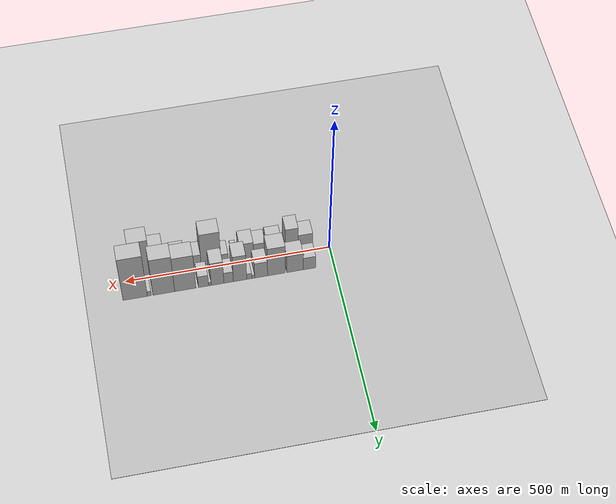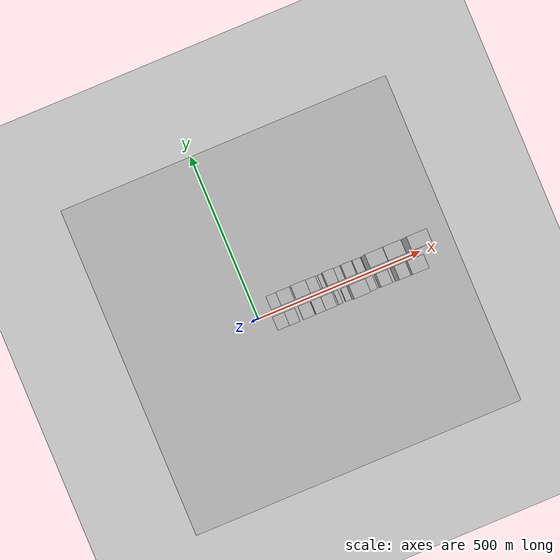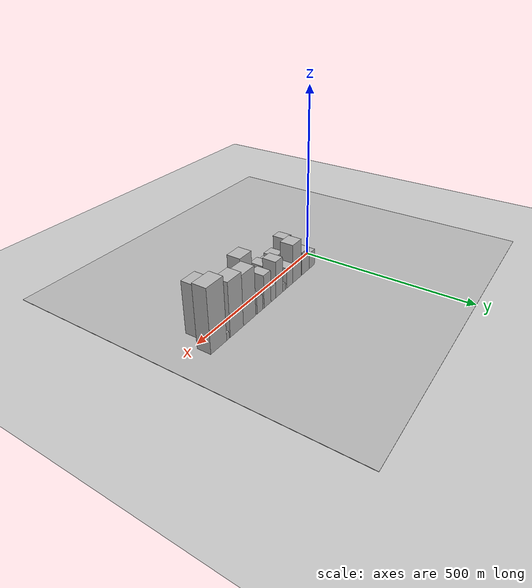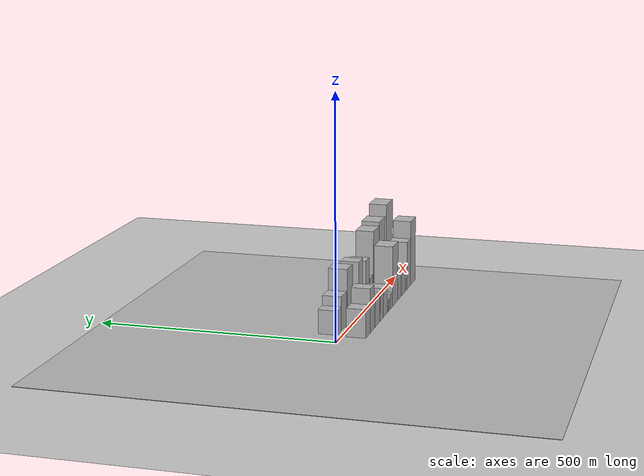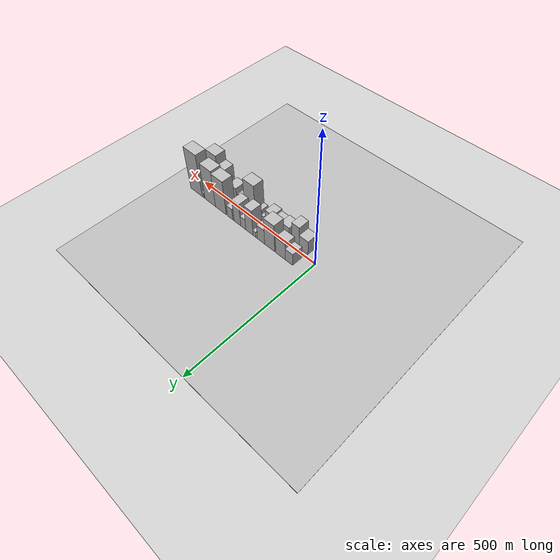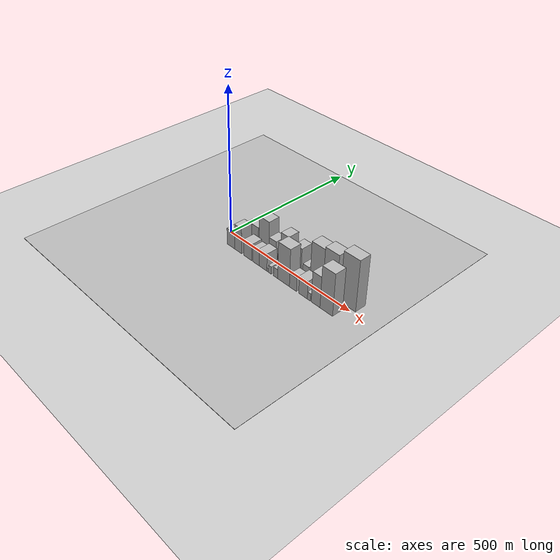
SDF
<?xml version="1.0" encoding="utf-8"?>

<sdf version="1.6">

   <world name="default">

      <gui fullscreen="0">

         <camera name="user_camera">

            <pose>-15 0 4.57585 0 0 0</pose>

            <view_controller>orbit</view_controller>

         </camera>

      </gui>

      <scene>

         <sky>

           <clouds>

             <speed>12</speed>

           </clouds>

         </sky>

         <ambient>0.4 0.4 0.4 1</ambient>

         <background>0.7 0.7 0.7 1</background>

         <shadows>1</shadows>

      </scene>

      <gravity>0 0 -9.8066</gravity>

      <magnetic_field>6e-06 2.3e-05 -4.2e-05</magnetic_field>

      <physics default="0" name="default_physics" type="ode">

         <ode>

            <solver>

               <type>quick</type>

               <iters>10</iters>

               <sor>1.0</sor>

               <use_dynamic_moi_rescaling>0</use_dynamic_moi_rescaling>

            </solver>

            <constraints>

               <cfm>0</cfm>

               <erp>0.2</erp>

               <contact_max_correcting_vel>100</contact_max_correcting_vel>

               <contact_surface_layer>0.001</contact_surface_layer>

            </constraints>

         </ode>

         <max_step_size>0.004</max_step_size>

         <real_time_factor>1</real_time_factor>

         <real_time_update_rate>250</real_time_update_rate>

      </physics>

      <light name="sun" type="directional">

         <cast_shadows>1</cast_shadows>

         <pose>0 0 10 0 0 0</pose>

         <diffuse>0.8 0.8 0.8 1</diffuse>

         <specular>0.2 0.2 0.2 1</specular>

         <attenuation>

            <range>1000</range>

            <constant>0.9</constant>

            <linear>0.01</linear>

            <quadratic>0.001</quadratic>

         </attenuation>

         <direction>-0.5 0.1 -0.9</direction>

      </light>

      <include>

         <name>ground_plane_1</name>

         <uri>model://HANNAS_ground_plane</uri>

         <pose>0 0 0  0 0 0</pose>

      </include>

      <include>

         <name>ground_plane_2</name>

         <uri>model://HANNAS_ground_plane</uri>

         <pose>100 0 0  0 0 0</pose>

      </include>

      <model name="building_1">

         <static>1</static>

         <pose frame="">60.1841 30.0000 0 0.000000 0.000000 1.570796</pose>

         <link name="link">

            <pose frame="">0 0 25.50 0 0 0</pose>

            <collision name="collision">

               <geometry>

                  <box>

                     <size>40.0000 30.3682 51.0000</size>

                  </box>

               </geometry>

               <max_contacts>10</max_contacts>

               <surface>

                  <contact>

                     <ode/>

                  </contact>

                  <bounce/>

                  <friction>

                     <torsional>

                        <ode/>

                     </torsional>

                     <ode/>

                  </friction>

               </surface>

            </collision>

            <visual name="visual">

               <cast_shadows>0</cast_shadows>

               <geometry>

                  <box>

                     <size>40.0000 30.3682 51.0000</size>

                  </box>

               </geometry>

               <material>

                  <script>

                     <uri>model://HANNAS_wall/materials/scripts</uri>

                     <uri>model://HANNAS_wall/materials/textures</uri>

                     <name>vrc/HANNAS_wall</name>

                  </script>

               </material>

            </visual>

            <self_collide>0</self_collide>

            <enable_wind>0</enable_wind>

            <kinematic>0</kinematic>

         </link>

      </model>

      <model name="building_2">

         <static>1</static>

         <pose frame="">95.4331 30.0000 0 0.000000 0.000000 1.570796</pose>

         <link name="link">

            <pose frame="">0 0 36.00 0 0 0</pose>

            <collision name="collision">

               <geometry>

                  <box>

                     <size>40.0000 40.1299 72.0000</size>

                  </box>

               </geometry>

               <max_contacts>10</max_contacts>

               <surface>

                  <contact>

                     <ode/>

                  </contact>

                  <bounce/>

                  <friction>

                     <torsional>

                        <ode/>

                     </torsional>

                     <ode/>

                  </friction>

               </surface>

            </collision>

            <visual name="visual">

               <cast_shadows>0</cast_shadows>

               <geometry>

                  <box>

                     <size>40.0000 40.1299 72.0000</size>

                  </box>

               </geometry>

               <material>

                  <script>

                     <uri>model://HANNAS_wall/materials/scripts</uri>

                     <uri>model://HANNAS_wall/materials/textures</uri>

                     <name>vrc/HANNAS_wall</name>

                  </script>

               </material>

            </visual>

            <self_collide>0</self_collide>

            <enable_wind>0</enable_wind>

            <kinematic>0</kinematic>

         </link>

      </model>

      <model name="building_3">

         <static>1</static>

         <pose frame="">141.0424 30.0000 0 0.000000 0.000000 1.570796</pose>

         <link name="link">

            <pose frame="">0 0 58.50 0 0 0</pose>

            <collision name="collision">

               <geometry>

                  <box>

                     <size>40.0000 43.0886 117.0000</size>

                  </box>

               </geometry>

               <max_contacts>10</max_contacts>

               <surface>

                  <contact>

                     <ode/>

                  </contact>

                  <bounce/>

                  <friction>

                     <torsional>

                        <ode/>

                     </torsional>

                     <ode/>

                  </friction>

               </surface>

            </collision>

            <visual name="visual">

               <cast_shadows>0</cast_shadows>

               <geometry>

                  <box>

                     <size>40.0000 43.0886 117.0000</size>

                  </box>

               </geometry>

               <material>

                  <script>

                     <uri>model://HANNAS_wall/materials/scripts</uri>

                     <uri>model://HANNAS_wall/materials/textures</uri>

                     <name>vrc/HANNAS_wall</name>

                  </script>

               </material>

            </visual>

            <self_collide>0</self_collide>

            <enable_wind>0</enable_wind>

            <kinematic>0</kinematic>

         </link>

      </model>

      <model name="building_4">

         <static>1</static>

         <pose frame="">178.3692 30.0000 0 0.000000 0.000000 1.570796</pose>

         <link name="link">

            <pose frame="">0 0 31.50 0 0 0</pose>

            <collision name="collision">

               <geometry>

                  <box>

                     <size>40.0000 31.5652 63.0000</size>

                  </box>

               </geometry>

               <max_contacts>10</max_contacts>

               <surface>

                  <contact>

                     <ode/>

                  </contact>

                  <bounce/>

                  <friction>

                     <torsional>

                        <ode/>

                     </torsional>

                     <ode/>

                  </friction>

               </surface>

            </collision>

            <visual name="visual">

               <cast_shadows>0</cast_shadows>

               <geometry>

                  <box>

                     <size>40.0000 31.5652 63.0000</size>

                  </box>

               </geometry>

               <material>

                  <script>

                     <uri>model://HANNAS_wall/materials/scripts</uri>

                     <uri>model://HANNAS_wall/materials/textures</uri>

                     <name>vrc/HANNAS_wall</name>

                  </script>

               </material>

            </visual>

            <self_collide>0</self_collide>

            <enable_wind>0</enable_wind>

            <kinematic>0</kinematic>

         </link>

      </model>

      <model name="building_5">

         <static>1</static>

         <pose frame="">197.7690 30.0000 0 0.000000 0.000000 1.570796</pose>

         <link name="link">

            <pose frame="">0 0 7.50 0 0 0</pose>

            <collision name="collision">

               <geometry>

                  <box>

                     <size>40.0000 7.2344 15.0000</size>

                  </box>

               </geometry>

               <max_contacts>10</max_contacts>

               <surface>

                  <contact>

                     <ode/>

                  </contact>

                  <bounce/>

                  <friction>

                     <torsional>

                        <ode/>

                     </torsional>

                     <ode/>

                  </friction>

               </surface>

            </collision>

            <visual name="visual">

               <cast_shadows>0</cast_shadows>

               <geometry>

                  <box>

                     <size>40.0000 7.2344 15.0000</size>

                  </box>

               </geometry>

               <material>

                  <script>

                     <uri>model://HANNAS_wall/materials/scripts</uri>

                     <uri>model://HANNAS_wall/materials/textures</uri>

                     <name>vrc/HANNAS_wall</name>

                  </script>

               </material>

            </visual>

            <self_collide>0</self_collide>

            <enable_wind>0</enable_wind>

            <kinematic>0</kinematic>

         </link>

      </model>

      <model name="building_6">

         <static>1</static>

         <pose frame="">207.3374 30.0000 0 0.000000 0.000000 1.570796</pose>

         <link name="link">

            <pose frame="">0 0 12.00 0 0 0</pose>

            <collision name="collision">

               <geometry>

                  <box>

                     <size>40.0000 11.9024 24.0000</size>

                  </box>

               </geometry>

               <max_contacts>10</max_contacts>

               <surface>

                  <contact>

                     <ode/>

                  </contact>

                  <bounce/>

                  <friction>

                     <torsional>

                        <ode/>

                     </torsional>

                     <ode/>

                  </friction>

               </surface>

            </collision>

            <visual name="visual">

               <cast_shadows>0</cast_shadows>

               <geometry>

                  <box>

                     <size>40.0000 11.9024 24.0000</size>

                  </box>

               </geometry>

               <material>

                  <script>

                     <uri>model://HANNAS_wall/materials/scripts</uri>

                     <uri>model://HANNAS_wall/materials/textures</uri>

                     <name>vrc/HANNAS_wall</name>

                  </script>

               </material>

            </visual>

            <self_collide>0</self_collide>

            <enable_wind>0</enable_wind>

            <kinematic>0</kinematic>

         </link>

      </model>

      <model name="building_7">

         <static>1</static>

         <pose frame="">229.5198 30.0000 0 0.000000 0.000000 1.570796</pose>

         <link name="link">

            <pose frame="">0 0 54.00 0 0 0</pose>

            <collision name="collision">

               <geometry>

                  <box>

                     <size>40.0000 32.4624 108.0000</size>

                  </box>

               </geometry>

               <max_contacts>10</max_contacts>

               <surface>

                  <contact>

                     <ode/>

                  </contact>

                  <bounce/>

                  <friction>

                     <torsional>

                        <ode/>

                     </torsional>

                     <ode/>

                  </friction>

               </surface>

            </collision>

            <visual name="visual">

               <cast_shadows>0</cast_shadows>

               <geometry>

                  <box>

                     <size>40.0000 32.4624 108.0000</size>

                  </box>

               </geometry>

               <material>

                  <script>

                     <uri>model://HANNAS_wall/materials/scripts</uri>

                     <uri>model://HANNAS_wall/materials/textures</uri>

                     <name>vrc/HANNAS_wall</name>

                  </script>

               </material>

            </visual>

            <self_collide>0</self_collide>

            <enable_wind>0</enable_wind>

            <kinematic>0</kinematic>

         </link>

      </model>

      <model name="building_8">

         <static>1</static>

         <pose frame="">257.2476 30.0000 0 0.000000 0.000000 1.570796</pose>

         <link name="link">

            <pose frame="">0 0 22.50 0 0 0</pose>

            <collision name="collision">

               <geometry>

                  <box>

                     <size>40.0000 22.9931 45.0000</size>

                  </box>

               </geometry>

               <max_contacts>10</max_contacts>

               <surface>

                  <contact>

                     <ode/>

                  </contact>

                  <bounce/>

                  <friction>

                     <torsional>

                        <ode/>

                     </torsional>

                     <ode/>

                  </friction>

               </surface>

            </collision>

            <visual name="visual">

               <cast_shadows>0</cast_shadows>

               <geometry>

                  <box>

                     <size>40.0000 22.9931 45.0000</size>

                  </box>

               </geometry>

               <material>

                  <script>

                     <uri>model://HANNAS_wall/materials/scripts</uri>

                     <uri>model://HANNAS_wall/materials/textures</uri>

                     <name>vrc/HANNAS_wall</name>

                  </script>

               </material>

            </visual>

            <self_collide>0</self_collide>

            <enable_wind>0</enable_wind>

            <kinematic>0</kinematic>

         </link>

      </model>

      <model name="building_9">

         <static>1</static>

         <pose frame="">284.2248 30.0000 0 0.000000 0.000000 1.570796</pose>

         <link name="link">

            <pose frame="">0 0 48.00 0 0 0</pose>

            <collision name="collision">

               <geometry>

                  <box>

                     <size>40.0000 30.9614 96.0000</size>

                  </box>

               </geometry>

               <max_contacts>10</max_contacts>

               <surface>

                  <contact>

                     <ode/>

                  </contact>

                  <bounce/>

                  <friction>

                     <torsional>

                        <ode/>

                     </torsional>

                     <ode/>

                  </friction>

               </surface>

            </collision>

            <visual name="visual">

               <cast_shadows>0</cast_shadows>

               <geometry>

                  <box>

                     <size>40.0000 30.9614 96.0000</size>

                  </box>

               </geometry>

               <material>

                  <script>

                     <uri>model://HANNAS_wall/materials/scripts</uri>

                     <uri>model://HANNAS_wall/materials/textures</uri>

                     <name>vrc/HANNAS_wall</name>

                  </script>

               </material>

            </visual>

            <self_collide>0</self_collide>

            <enable_wind>0</enable_wind>

            <kinematic>0</kinematic>

         </link>

      </model>

      <model name="building_10">

         <static>1</static>

         <pose frame="">302.7781 30.0000 0 0.000000 0.000000 1.570796</pose>

         <link name="link">

            <pose frame="">0 0 7.50 0 0 0</pose>

            <collision name="collision">

               <geometry>

                  <box>

                     <size>40.0000 6.1452 15.0000</size>

                  </box>

               </geometry>

               <max_contacts>10</max_contacts>

               <surface>

                  <contact>

                     <ode/>

                  </contact>

                  <bounce/>

                  <friction>

                     <torsional>

                        <ode/>

                     </torsional>

                     <ode/>

                  </friction>

               </surface>

            </collision>

            <visual name="visual">

               <cast_shadows>0</cast_shadows>

               <geometry>

                  <box>

                     <size>40.0000 6.1452 15.0000</size>

                  </box>

               </geometry>

               <material>

                  <script>

                     <uri>model://HANNAS_wall/materials/scripts</uri>

                     <uri>model://HANNAS_wall/materials/textures</uri>

                     <name>vrc/HANNAS_wall</name>

                  </script>

               </material>

            </visual>

            <self_collide>0</self_collide>

            <enable_wind>0</enable_wind>

            <kinematic>0</kinematic>

         </link>

      </model>

      <model name="building_11">

         <static>1</static>

         <pose frame="">318.1075 30.0000 0 0.000000 0.000000 1.570796</pose>

         <link name="link">

            <pose frame="">0 0 24.00 0 0 0</pose>

            <collision name="collision">

               <geometry>

                  <box>

                     <size>40.0000 24.5138 48.0000</size>

                  </box>

               </geometry>

               <max_contacts>10</max_contacts>

               <surface>

                  <contact>

                     <ode/>

                  </contact>

                  <bounce/>

                  <friction>

                     <torsional>

                        <ode/>

                     </torsional>

                     <ode/>

                  </friction>

               </surface>

            </collision>

            <visual name="visual">

               <cast_shadows>0</cast_shadows>

               <geometry>

                  <box>

                     <size>40.0000 24.5138 48.0000</size>

                  </box>

               </geometry>

               <material>

                  <script>

                     <uri>model://HANNAS_wall/materials/scripts</uri>

                     <uri>model://HANNAS_wall/materials/textures</uri>

                     <name>vrc/HANNAS_wall</name>

                  </script>

               </material>

            </visual>

            <self_collide>0</self_collide>

            <enable_wind>0</enable_wind>

            <kinematic>0</kinematic>

         </link>

      </model>

      <model name="building_12">

         <static>1</static>

         <pose frame="">361.9937 30.0000 0 0.000000 0.000000 1.570796</pose>

         <link name="link">

            <pose frame="">0 0 72.00 0 0 0</pose>

            <collision name="collision">

               <geometry>

                  <box>

                     <size>40.0000 51.2584 144.0000</size>

                  </box>

               </geometry>

               <max_contacts>10</max_contacts>

               <surface>

                  <contact>

                     <ode/>

                  </contact>

                  <bounce/>

                  <friction>

                     <torsional>

                        <ode/>

                     </torsional>

                     <ode/>

                  </friction>

               </surface>

            </collision>

            <visual name="visual">

               <cast_shadows>0</cast_shadows>

               <geometry>

                  <box>

                     <size>40.0000 51.2584 144.0000</size>

                  </box>

               </geometry>

               <material>

                  <script>

                     <uri>model://HANNAS_wall/materials/scripts</uri>

                     <uri>model://HANNAS_wall/materials/textures</uri>

                     <name>vrc/HANNAS_wall</name>

                  </script>

               </material>

            </visual>

            <self_collide>0</self_collide>

            <enable_wind>0</enable_wind>

            <kinematic>0</kinematic>

         </link>

      </model>

      <model name="building_13">

         <static>1</static>

         <pose frame="">413.6820 30.0000 0 0.000000 0.000000 1.570796</pose>

         <link name="link">

            <pose frame="">0 0 76.50 0 0 0</pose>

            <collision name="collision">

               <geometry>

                  <box>

                     <size>40.0000 52.1183 153.0000</size>

                  </box>

               </geometry>

               <max_contacts>10</max_contacts>

               <surface>

                  <contact>

                     <ode/>

                  </contact>

                  <bounce/>

                  <friction>

                     <torsional>

                        <ode/>

                     </torsional>

                     <ode/>

                  </friction>

               </surface>

            </collision>

            <visual name="visual">

               <cast_shadows>0</cast_shadows>

               <geometry>

                  <box>

                     <size>40.0000 52.1183 153.0000</size>

                  </box>

               </geometry>

               <material>

                  <script>

                     <uri>model://HANNAS_wall/materials/scripts</uri>

                     <uri>model://HANNAS_wall/materials/textures</uri>

                     <name>vrc/HANNAS_wall</name>

                  </script>

               </material>

            </visual>

            <self_collide>0</self_collide>

            <enable_wind>0</enable_wind>

            <kinematic>0</kinematic>

         </link>

      </model>

      <model name="building_14">

         <static>1</static>

         <pose frame="">448.4865 30.0000 0 0.000000 0.000000 1.570796</pose>

         <link name="link">

            <pose frame="">0 0 10.50 0 0 0</pose>

            <collision name="collision">

               <geometry>

                  <box>

                     <size>40.0000 9.4907 21.0000</size>

                  </box>

               </geometry>

               <max_contacts>10</max_contacts>

               <surface>

                  <contact>

                     <ode/>

                  </contact>

                  <bounce/>

                  <friction>

                     <torsional>

                        <ode/>

                     </torsional>

                     <ode/>

                  </friction>

               </surface>

            </collision>

            <visual name="visual">

               <cast_shadows>0</cast_shadows>

               <geometry>

                  <box>

                     <size>40.0000 9.4907 21.0000</size>

                  </box>

               </geometry>

               <material>

                  <script>

                     <uri>model://HANNAS_wall/materials/scripts</uri>

                     <uri>model://HANNAS_wall/materials/textures</uri>

                     <name>vrc/HANNAS_wall</name>

                  </script>

               </material>

            </visual>

            <self_collide>0</self_collide>

            <enable_wind>0</enable_wind>

            <kinematic>0</kinematic>

         </link>

      </model>

      <model name="building_15">

         <static>1</static>

         <pose frame="">482.4207 30.0000 0 0.000000 0.000000 1.570796</pose>

         <link name="link">

            <pose frame="">0 0 88.50 0 0 0</pose>

            <collision name="collision">

               <geometry>

                  <box>

                     <size>40.0000 58.3776 177.0000</size>

                  </box>

               </geometry>

               <max_contacts>10</max_contacts>

               <surface>

                  <contact>

                     <ode/>

                  </contact>

                  <bounce/>

                  <friction>

                     <torsional>

                        <ode/>

                     </torsional>

                     <ode/>

                  </friction>

               </surface>

            </collision>

            <visual name="visual">

               <cast_shadows>0</cast_shadows>

               <geometry>

                  <box>

                     <size>40.0000 58.3776 177.0000</size>

                  </box>

               </geometry>

               <material>

                  <script>

                     <uri>model://HANNAS_wall/materials/scripts</uri>

                     <uri>model://HANNAS_wall/materials/textures</uri>

                     <name>vrc/HANNAS_wall</name>

                  </script>

               </material>

            </visual>

            <self_collide>0</self_collide>

            <enable_wind>0</enable_wind>

            <kinematic>0</kinematic>

         </link>

      </model>

      <model name="building_16">

         <static>1</static>

         <pose frame="">57.8792 -30.0000 0 0.000000 0.000000 1.570796</pose>

         <link name="link">

            <pose frame="">0 0 30.00 0 0 0</pose>

            <collision name="collision">

               <geometry>

                  <box>

                     <size>40.0000 35.7584 60.0000</size>

                  </box>

               </geometry>

               <max_contacts>10</max_contacts>

               <surface>

                  <contact>

                     <ode/>

                  </contact>

                  <bounce/>

                  <friction>

                     <torsional>

                        <ode/>

                     </torsional>

                     <ode/>

                  </friction>

               </surface>

            </collision>

            <visual name="visual">

               <cast_shadows>0</cast_shadows>

               <geometry>

                  <box>

                     <size>40.0000 35.7584 60.0000</size>

                  </box>

               </geometry>

               <material>

                  <script>

                     <uri>model://HANNAS_wall/materials/scripts</uri>

                     <uri>model://HANNAS_wall/materials/textures</uri>

                     <name>vrc/HANNAS_wall</name>

                  </script>

               </material>

            </visual>

            <self_collide>0</self_collide>

            <enable_wind>0</enable_wind>

            <kinematic>0</kinematic>

         </link>

      </model>

      <model name="building_17">

         <static>1</static>

         <pose frame="">91.4149 -30.0000 0 0.000000 0.000000 1.570796</pose>

         <link name="link">

            <pose frame="">0 0 46.50 0 0 0</pose>

            <collision name="collision">

               <geometry>

                  <box>

                     <size>40.0000 31.3130 93.0000</size>

                  </box>

               </geometry>

               <max_contacts>10</max_contacts>

               <surface>

                  <contact>

                     <ode/>

                  </contact>

                  <bounce/>

                  <friction>

                     <torsional>

                        <ode/>

                     </torsional>

                     <ode/>

                  </friction>

               </surface>

            </collision>

            <visual name="visual">

               <cast_shadows>0</cast_shadows>

               <geometry>

                  <box>

                     <size>40.0000 31.3130 93.0000</size>

                  </box>

               </geometry>

               <material>

                  <script>

                     <uri>model://HANNAS_wall/materials/scripts</uri>

                     <uri>model://HANNAS_wall/materials/textures</uri>

                     <name>vrc/HANNAS_wall</name>

                  </script>

               </material>

            </visual>

            <self_collide>0</self_collide>

            <enable_wind>0</enable_wind>

            <kinematic>0</kinematic>

         </link>

      </model>

      <model name="building_18">

         <static>1</static>

         <pose frame="">135.0102 -30.0000 0 0.000000 0.000000 1.570796</pose>

         <link name="link">

            <pose frame="">0 0 30.00 0 0 0</pose>

            <collision name="collision">

               <geometry>

                  <box>

                     <size>40.0000 35.8777 60.0000</size>

                  </box>

               </geometry>

               <max_contacts>10</max_contacts>

               <surface>

                  <contact>

                     <ode/>

                  </contact>

                  <bounce/>

                  <friction>

                     <torsional>

                        <ode/>

                     </torsional>

                     <ode/>

                  </friction>

               </surface>

            </collision>

            <visual name="visual">

               <cast_shadows>0</cast_shadows>

               <geometry>

                  <box>

                     <size>40.0000 35.8777 60.0000</size>

                  </box>

               </geometry>

               <material>

                  <script>

                     <uri>model://HANNAS_wall/materials/scripts</uri>

                     <uri>model://HANNAS_wall/materials/textures</uri>

                     <name>vrc/HANNAS_wall</name>

                  </script>

               </material>

            </visual>

            <self_collide>0</self_collide>

            <enable_wind>0</enable_wind>

            <kinematic>0</kinematic>

         </link>

      </model>

      <model name="building_19">

         <static>1</static>

         <pose frame="">170.6557 -30.0000 0 0.000000 0.000000 1.570796</pose>

         <link name="link">

            <pose frame="">0 0 27.00 0 0 0</pose>

            <collision name="collision">

               <geometry>

                  <box>

                     <size>40.0000 29.4133 54.0000</size>

                  </box>

               </geometry>

               <max_contacts>10</max_contacts>

               <surface>

                  <contact>

                     <ode/>

                  </contact>

                  <bounce/>

                  <friction>

                     <torsional>

                        <ode/>

                     </torsional>

                     <ode/>

                  </friction>

               </surface>

            </collision>

            <visual name="visual">

               <cast_shadows>0</cast_shadows>

               <geometry>

                  <box>

                     <size>40.0000 29.4133 54.0000</size>

                  </box>

               </geometry>

               <material>

                  <script>

                     <uri>model://HANNAS_wall/materials/scripts</uri>

                     <uri>model://HANNAS_wall/materials/textures</uri>

                     <name>vrc/HANNAS_wall</name>

                  </script>

               </material>

            </visual>

            <self_collide>0</self_collide>

            <enable_wind>0</enable_wind>

            <kinematic>0</kinematic>

         </link>

      </model>

      <model name="building_20">

         <static>1</static>

         <pose frame="">202.2260 -30.0000 0 0.000000 0.000000 1.570796</pose>

         <link name="link">

            <pose frame="">0 0 31.50 0 0 0</pose>

            <collision name="collision">

               <geometry>

                  <box>

                     <size>40.0000 33.7273 63.0000</size>

                  </box>

               </geometry>

               <max_contacts>10</max_contacts>

               <surface>

                  <contact>

                     <ode/>

                  </contact>

                  <bounce/>

                  <friction>

                     <torsional>

                        <ode/>

                     </torsional>

                     <ode/>

                  </friction>

               </surface>

            </collision>

            <visual name="visual">

               <cast_shadows>0</cast_shadows>

               <geometry>

                  <box>

                     <size>40.0000 33.7273 63.0000</size>

                  </box>

               </geometry>

               <material>

                  <script>

                     <uri>model://HANNAS_wall/materials/scripts</uri>

                     <uri>model://HANNAS_wall/materials/textures</uri>

                     <name>vrc/HANNAS_wall</name>

                  </script>

               </material>

            </visual>

            <self_collide>0</self_collide>

            <enable_wind>0</enable_wind>

            <kinematic>0</kinematic>

         </link>

      </model>

      <model name="building_21">

         <static>1</static>

         <pose frame="">222.4134 -30.0000 0 0.000000 0.000000 1.570796</pose>

         <link name="link">

            <pose frame="">0 0 7.50 0 0 0</pose>

            <collision name="collision">

               <geometry>

                  <box>

                     <size>40.0000 6.6476 15.0000</size>

                  </box>

               </geometry>

               <max_contacts>10</max_contacts>

               <surface>

                  <contact>

                     <ode/>

                  </contact>

                  <bounce/>

                  <friction>

                     <torsional>

                        <ode/>

                     </torsional>

                     <ode/>

                  </friction>

               </surface>

            </collision>

            <visual name="visual">

               <cast_shadows>0</cast_shadows>

               <geometry>

                  <box>

                     <size>40.0000 6.6476 15.0000</size>

                  </box>

               </geometry>

               <material>

                  <script>

                     <uri>model://HANNAS_wall/materials/scripts</uri>

                     <uri>model://HANNAS_wall/materials/textures</uri>

                     <name>vrc/HANNAS_wall</name>

                  </script>

               </material>

            </visual>

            <self_collide>0</self_collide>

            <enable_wind>0</enable_wind>

            <kinematic>0</kinematic>

         </link>

      </model>

      <model name="building_22">

         <static>1</static>

         <pose frame="">231.9874 -30.0000 0 0.000000 0.000000 1.570796</pose>

         <link name="link">

            <pose frame="">0 0 13.50 0 0 0</pose>

            <collision name="collision">

               <geometry>

                  <box>

                     <size>40.0000 12.5003 27.0000</size>

                  </box>

               </geometry>

               <max_contacts>10</max_contacts>

               <surface>

                  <contact>

                     <ode/>

                  </contact>

                  <bounce/>

                  <friction>

                     <torsional>

                        <ode/>

                     </torsional>

                     <ode/>

                  </friction>

               </surface>

            </collision>

            <visual name="visual">

               <cast_shadows>0</cast_shadows>

               <geometry>

                  <box>

                     <size>40.0000 12.5003 27.0000</size>

                  </box>

               </geometry>

               <material>

                  <script>

                     <uri>model://HANNAS_wall/materials/scripts</uri>

                     <uri>model://HANNAS_wall/materials/textures</uri>

                     <name>vrc/HANNAS_wall</name>

                  </script>

               </material>

            </visual>

            <self_collide>0</self_collide>

            <enable_wind>0</enable_wind>

            <kinematic>0</kinematic>

         </link>

      </model>

      <model name="building_23">

         <static>1</static>

         <pose frame="">256.2343 -30.0000 0 0.000000 0.000000 1.570796</pose>

         <link name="link">

            <pose frame="">0 0 16.50 0 0 0</pose>

            <collision name="collision">

               <geometry>

                  <box>

                     <size>40.0000 17.9935 33.0000</size>

                  </box>

               </geometry>

               <max_contacts>10</max_contacts>

               <surface>

                  <contact>

                     <ode/>

                  </contact>

                  <bounce/>

                  <friction>

                     <torsional>

                        <ode/>

                     </torsional>

                     <ode/>

                  </friction>

               </surface>

            </collision>

            <visual name="visual">

               <cast_shadows>0</cast_shadows>

               <geometry>

                  <box>

                     <size>40.0000 17.9935 33.0000</size>

                  </box>

               </geometry>

               <material>

                  <script>

                     <uri>model://HANNAS_wall/materials/scripts</uri>

                     <uri>model://HANNAS_wall/materials/textures</uri>

                     <name>vrc/HANNAS_wall</name>

                  </script>

               </material>

            </visual>

            <self_collide>0</self_collide>

            <enable_wind>0</enable_wind>

            <kinematic>0</kinematic>

         </link>

      </model>

      <model name="building_24">

         <static>1</static>

         <pose frame="">289.4714 -30.0000 0 0.000000 0.000000 1.570796</pose>

         <link name="link">

            <pose frame="">0 0 66.00 0 0 0</pose>

            <collision name="collision">

               <geometry>

                  <box>

                     <size>40.0000 48.4808 132.0000</size>

                  </box>

               </geometry>

               <max_contacts>10</max_contacts>

               <surface>

                  <contact>

                     <ode/>

                  </contact>

                  <bounce/>

                  <friction>

                     <torsional>

                        <ode/>

                     </torsional>

                     <ode/>

                  </friction>

               </surface>

            </collision>

            <visual name="visual">

               <cast_shadows>0</cast_shadows>

               <geometry>

                  <box>

                     <size>40.0000 48.4808 132.0000</size>

                  </box>

               </geometry>

               <material>

                  <script>

                     <uri>model://HANNAS_wall/materials/scripts</uri>

                     <uri>model://HANNAS_wall/materials/textures</uri>

                     <name>vrc/HANNAS_wall</name>

                  </script>

               </material>

            </visual>

            <self_collide>0</self_collide>

            <enable_wind>0</enable_wind>

            <kinematic>0</kinematic>

         </link>

      </model>

      <model name="building_25">

         <static>1</static>

         <pose frame="">328.0480 -30.0000 0 0.000000 0.000000 1.570796</pose>

         <link name="link">

            <pose frame="">0 0 24.00 0 0 0</pose>

            <collision name="collision">

               <geometry>

                  <box>

                     <size>40.0000 28.6723 48.0000</size>

                  </box>

               </geometry>

               <max_contacts>10</max_contacts>

               <surface>

                  <contact>

                     <ode/>

                  </contact>

                  <bounce/>

                  <friction>

                     <torsional>

                        <ode/>

                     </torsional>

                     <ode/>

                  </friction>

               </surface>

            </collision>

            <visual name="visual">

               <cast_shadows>0</cast_shadows>

               <geometry>

                  <box>

                     <size>40.0000 28.6723 48.0000</size>

                  </box>

               </geometry>

               <material>

                  <script>

                     <uri>model://HANNAS_wall/materials/scripts</uri>

                     <uri>model://HANNAS_wall/materials/textures</uri>

                     <name>vrc/HANNAS_wall</name>

                  </script>

               </material>

            </visual>

            <self_collide>0</self_collide>

            <enable_wind>0</enable_wind>

            <kinematic>0</kinematic>

         </link>

      </model>

      <model name="building_26">

         <static>1</static>

         <pose frame="">368.5275 -30.0000 0 0.000000 0.000000 1.570796</pose>

         <link name="link">

            <pose frame="">0 0 31.50 0 0 0</pose>

            <collision name="collision">

               <geometry>

                  <box>

                     <size>40.0000 34.2866 63.0000</size>

                  </box>

               </geometry>

               <max_contacts>10</max_contacts>

               <surface>

                  <contact>

                     <ode/>

                  </contact>

                  <bounce/>

                  <friction>

                     <torsional>

                        <ode/>

                     </torsional>

                     <ode/>

                  </friction>

               </surface>

            </collision>

            <visual name="visual">

               <cast_shadows>0</cast_shadows>

               <geometry>

                  <box>

                     <size>40.0000 34.2866 63.0000</size>

                  </box>

               </geometry>

               <material>

                  <script>

                     <uri>model://HANNAS_wall/materials/scripts</uri>

                     <uri>model://HANNAS_wall/materials/textures</uri>

                     <name>vrc/HANNAS_wall</name>

                  </script>

               </material>

            </visual>

            <self_collide>0</self_collide>

            <enable_wind>0</enable_wind>

            <kinematic>0</kinematic>

         </link>

      </model>

      <model name="building_27">

         <static>1</static>

         <pose frame="">391.7832 -30.0000 0 0.000000 0.000000 1.570796</pose>

         <link name="link">

            <pose frame="">0 0 13.50 0 0 0</pose>

            <collision name="collision">

               <geometry>

                  <box>

                     <size>40.0000 12.2248 27.0000</size>

                  </box>

               </geometry>

               <max_contacts>10</max_contacts>

               <surface>

                  <contact>

                     <ode/>

                  </contact>

                  <bounce/>

                  <friction>

                     <torsional>

                        <ode/>

                     </torsional>

                     <ode/>

                  </friction>

               </surface>

            </collision>

            <visual name="visual">

               <cast_shadows>0</cast_shadows>

               <geometry>

                  <box>

                     <size>40.0000 12.2248 27.0000</size>

                  </box>

               </geometry>

               <material>

                  <script>

                     <uri>model://HANNAS_wall/materials/scripts</uri>

                     <uri>model://HANNAS_wall/materials/textures</uri>

                     <name>vrc/HANNAS_wall</name>

                  </script>

               </material>

            </visual>

            <self_collide>0</self_collide>

            <enable_wind>0</enable_wind>

            <kinematic>0</kinematic>

         </link>

      </model>

      <model name="building_28">

         <static>1</static>

         <pose frame="">417.7433 -30.0000 0 0.000000 0.000000 1.570796</pose>

         <link name="link">

            <pose frame="">0 0 54.00 0 0 0</pose>

            <collision name="collision">

               <geometry>

                  <box>

                     <size>40.0000 33.6953 108.0000</size>

                  </box>

               </geometry>

               <max_contacts>10</max_contacts>

               <surface>

                  <contact>

                     <ode/>

                  </contact>

                  <bounce/>

                  <friction>

                     <torsional>

                        <ode/>

                     </torsional>

                     <ode/>

                  </friction>

               </surface>

            </collision>

            <visual name="visual">

               <cast_shadows>0</cast_shadows>

               <geometry>

                  <box>

                     <size>40.0000 33.6953 108.0000</size>

                  </box>

               </geometry>

               <material>

                  <script>

                     <uri>model://HANNAS_wall/materials/scripts</uri>

                     <uri>model://HANNAS_wall/materials/textures</uri>

                     <name>vrc/HANNAS_wall</name>

                  </script>

               </material>

            </visual>

            <self_collide>0</self_collide>

            <enable_wind>0</enable_wind>

            <kinematic>0</kinematic>

         </link>

      </model>

      <model name="building_29">

         <static>1</static>

         <pose frame="">458.4725 -30.0000 0 0.000000 0.000000 1.570796</pose>

         <link name="link">

            <pose frame="">0 0 73.50 0 0 0</pose>

            <collision name="collision">

               <geometry>

                  <box>

                     <size>40.0000 47.7631 147.0000</size>

                  </box>

               </geometry>

               <max_contacts>10</max_contacts>

               <surface>

                  <contact>

                     <ode/>

                  </contact>

                  <bounce/>

                  <friction>

                     <torsional>

                        <ode/>

                     </torsional>

                     <ode/>

                  </friction>

               </surface>

            </collision>

            <visual name="visual">

               <cast_shadows>0</cast_shadows>

               <geometry>

                  <box>

                     <size>40.0000 47.7631 147.0000</size>

                  </box>

               </geometry>

               <material>

                  <script>

                     <uri>model://HANNAS_wall/materials/scripts</uri>

                     <uri>model://HANNAS_wall/materials/textures</uri>

                     <name>vrc/HANNAS_wall</name>

                  </script>

               </material>

            </visual>

            <self_collide>0</self_collide>

            <enable_wind>0</enable_wind>

            <kinematic>0</kinematic>

         </link>

      </model>

   </world>

</sdf>

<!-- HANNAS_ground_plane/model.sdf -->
<sdf version="1.4">
<model name="HANNAS_ground_plane">
  <static>true</static>
    <link name="link">
      <collision name="collision">
        <geometry>
          <plane>
            <normal>0 0 1</normal>
            <size>1000 1000</size>
          </plane>
        </geometry>
        <surface>
          <friction>
            <ode>
              <mu>100</mu>
              <mu2>50</mu2>
            </ode>
          </friction>
        </surface>
      </collision>
      <visual name="visual">
        <cast_shadows>false</cast_shadows>
        <geometry>
          <plane>
            <normal>0 0 1</normal>
            <size>1000 1000</size>
          </plane>
        </geometry>
        <material>
          <script>
            <uri>model://HANNAS_ground_plane/materials/scripts/HANNAS_ground_plane.material</uri>
	    <uri>model://HANNAS_ground_plane/materials/textures</uri>
            <name>HANNASGroundPlane/Image</name>
          </script>
        </material>
      </visual>
    </link>
  </model>
</sdf>
